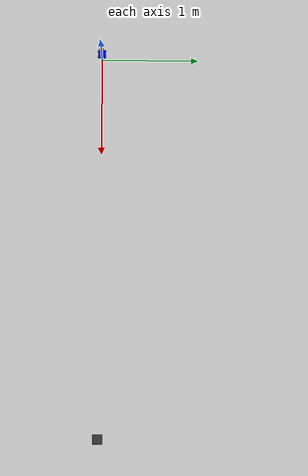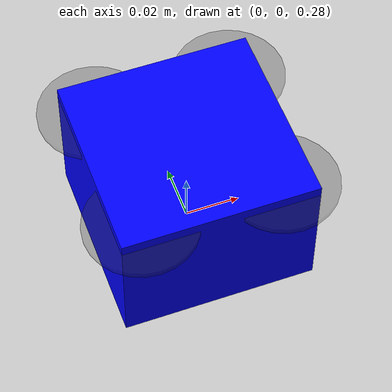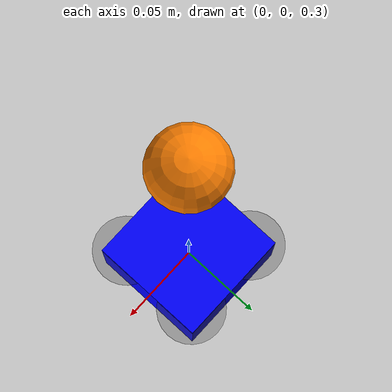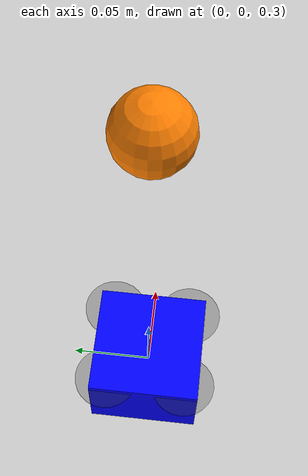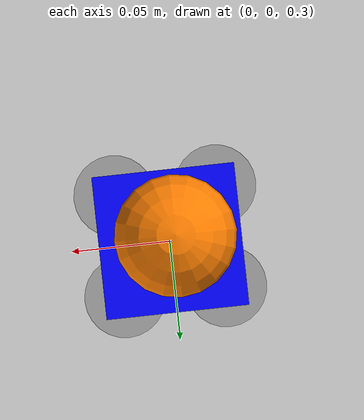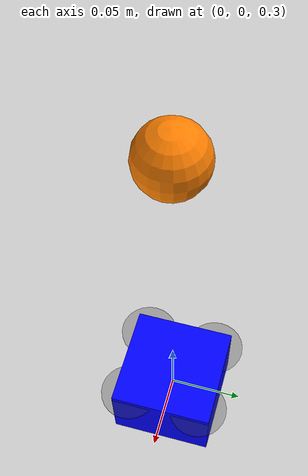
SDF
<?xml version="1.0" ?>
<sdf version="1.9">
  <world name="lifting_world">
    <physics name="fast_simulation" type="ignored">
      <max_step_size>0.0005</max_step_size>
      <real_time_factor>1.0</real_time_factor>
    </physics>

    <plugin filename="ignition-gazebo-physics-system"
            name="ignition::gazebo::systems::Physics"/>
    <plugin filename="ignition-gazebo-user-commands-system"
            name="ignition::gazebo::systems::UserCommands"/>
    <plugin filename="ignition-gazebo-scene-broadcaster-system"
            name="ignition::gazebo::systems::SceneBroadcaster"/>
    <plugin filename="ignition-gazebo-sensors-system"
            name="ignition::gazebo::systems::Sensors">
      <render_engine>ogre2</render_engine>
    </plugin>

    <scene>
      <ambient>0.6 0.6 0.6 1</ambient>
      <background>0.5 0.5 0.5 1</background>
      <shadows>false</shadows>
    </scene>

    <light type="directional" name="sun">
      <cast_shadows>false</cast_shadows>
      <pose>0 0 10 0 0 0</pose>
      <diffuse>0.8 0.8 0.8 1</diffuse>
      <specular>0.1 0.1 0.1 1</specular>
      <direction>-0.5 0.1 -0.9</direction>
    </light>

    <model name="ground_plane">
      <static>true</static>
      <link name="link">
        <collision name="collision">
          <geometry><plane><normal>0 0 1</normal></plane></geometry>
        </collision>
        <visual name="visual">
          <geometry><plane><normal>0 0 1</normal><size>10 10</size></plane></geometry>
          <material><ambient>0.8 0.8 0.8 1</ambient></material>
        </visual>
      </link>
    </model>

    <include>
      <uri>model://ground_camera</uri>
      <pose>4.0 0 0.5 0 0 3.14159</pose>
    </include>

    <include>
      <uri>model://m5fly</uri>
      <pose>0 0 0.30 0 0 0</pose>
    </include>

    <!--
      ボール初期位置: z=0.55m
      z=0.30m のドローンの真上 0.25m に配置。
      ボールが重力で落下 → 約 0.2s 後にドローンに到達 → スマッシュのサイクル開始。
    -->
    <include>
      <uri>model://pingpong_ball</uri>
      <pose>0 0 0.55 0 0 0</pose>
    </include>

  </world>
</sdf>

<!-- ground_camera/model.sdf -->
<sdf version="1.6">
  <model name="ground_camera">
    <static>true</static>
    <link name="link">
      <visual name="visual">
        <geometry><box><size>0.1 0.1 0.05</size></box></geometry>
        <material><diffuse>0.2 0.2 0.2 1</diffuse></material>
      </visual>

      <sensor name="camera_ground" type="camera">
        <pose>0 0 0.05 0 0 0</pose>
        <camera>
          <horizontal_fov>1.5</horizontal_fov>
          <image>
            <width>1280</width><height>720</height>
          </image>
          <clip><near>0.01</near><far>10</far></clip>
        </camera>
        <always_on>1</always_on>
        <update_rate>30</update_rate>
        <visualize>true</visualize>
        <topic>camera/image_raw</topic>
      </sensor>
    </link>
  </model>
</sdf>

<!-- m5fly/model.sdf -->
<sdf version="1.9">
  <model name="m5fly">
    <pose>0 0 0.3 0 0 0</pose>

    <link name="base_link">
      <gravity>false</gravity>
      <inertial>
        <mass>0.035</mass>
        <inertia>
          <ixx>0.00003</ixx><ixy>0</ixy><ixz>0</ixz>
          <iyy>0.00003</iyy><iyz>0</iyz>
          <izz>0.00006</izz>
        </inertia>
      </inertial>

      <visual name="body_visual">
        <geometry>
          <box><size>0.07 0.07 0.05</size></box>
        </geometry>
        <material>
          <ambient>0.0 0.0 0.8 1</ambient>
          <diffuse>0.0 0.0 1.0 1</diffuse>
          <specular>0.0 0.0 0.1 1</specular>
          <emissive>0.0 0.0 0.5 1</emissive>
        </material>
      </visual>

      <collision name="collision">
        <geometry>
          <box><size>0.07 0.07 0.02</size></box>
        </geometry>
        <surface>
          <bounce>
            <restitution_coefficient>1.0</restitution_coefficient>
            <threshold>0</threshold>
          </bounce>
          <contact>
            <ode><max_vel>100</max_vel><min_depth>0.001</min_depth></ode>
          </contact>
        </surface>
      </collision>

      <collision name="top_guard_collision">
        <pose>0 0 0.035 0 0 0</pose>
        <geometry>
          <box><size>0.09 0.09 0.002</size></box>
        </geometry>
        <surface>
          <friction>
            <ode><mu>0.0</mu><mu2>0.0</mu2></ode>
          </friction>
          <bounce>
            <restitution_coefficient>0.9</restitution_coefficient>
            <threshold>0.01</threshold>
          </bounce>
          <contact>
            <ode><max_vel>100</max_vel><min_depth>0.001</min_depth></ode>
          </contact>
        </surface>
      </collision>
    </link>

    <link name="rotor_0">
      <pose>0.025 -0.025 0.02 0 0 0</pose>
      <gravity>false</gravity>
      <inertial><mass>0.001</mass>
        <inertia><ixx>0.000001</ixx><iyy>0.000001</iyy><izz>0.000001</izz></inertia>
      </inertial>
      <visual name="rotor_0_visual">
        <geometry><cylinder><radius>0.02</radius><length>0.002</length></cylinder></geometry>
        <material><diffuse>0.2 0.2 0.2 0.3</diffuse></material>
      </visual>
    </link>
    <joint name="rotor_0_joint" type="revolute">
      <parent>base_link</parent><child>rotor_0</child>
      <axis><xyz>0 0 1</xyz><limit><lower>-1e16</lower><upper>1e16</upper></limit></axis>
    </joint>

    <link name="rotor_1">
      <pose>-0.025 -0.025 0.02 0 0 0</pose>
      <gravity>false</gravity>
      <inertial><mass>0.001</mass>
        <inertia><ixx>0.000001</ixx><iyy>0.000001</iyy><izz>0.000001</izz></inertia>
      </inertial>
      <visual name="rotor_1_visual">
        <geometry><cylinder><radius>0.02</radius><length>0.002</length></cylinder></geometry>
        <material><diffuse>0.2 0.2 0.2 0.3</diffuse></material>
      </visual>
    </link>
    <joint name="rotor_1_joint" type="revolute">
      <parent>base_link</parent><child>rotor_1</child>
      <axis><xyz>0 0 1</xyz><limit><lower>-1e16</lower><upper>1e16</upper></limit></axis>
    </joint>

    <link name="rotor_2">
      <pose>0.025 0.025 0.02 0 0 0</pose>
      <gravity>false</gravity>
      <inertial><mass>0.001</mass>
        <inertia><ixx>0.000001</ixx><iyy>0.000001</iyy><izz>0.000001</izz></inertia>
      </inertial>
      <visual name="rotor_2_visual">
        <geometry><cylinder><radius>0.02</radius><length>0.002</length></cylinder></geometry>
        <material><diffuse>0.2 0.2 0.2 0.3</diffuse></material>
      </visual>
    </link>
    <joint name="rotor_2_joint" type="revolute">
      <parent>base_link</parent><child>rotor_2</child>
      <axis><xyz>0 0 1</xyz><limit><lower>-1e16</lower><upper>1e16</upper></limit></axis>
    </joint>

    <link name="rotor_3">
      <pose>-0.025 0.025 0.02 0 0 0</pose>
      <gravity>false</gravity>
      <inertial><mass>0.001</mass>
        <inertia><ixx>0.000001</ixx><iyy>0.000001</iyy><izz>0.000001</izz></inertia>
      </inertial>
      <visual name="rotor_3_visual">
        <geometry><cylinder><radius>0.02</radius><length>0.002</length></cylinder></geometry>
        <material><diffuse>0.2 0.2 0.2 0.3</diffuse></material>
      </visual>
    </link>
    <joint name="rotor_3_joint" type="revolute">
      <parent>base_link</parent><child>rotor_3</child>
      <axis><xyz>0 0 1</xyz><limit><lower>-1e16</lower><upper>1e16</upper></limit></axis>
    </joint>

    <!--
      VelocityControl: cmd_vel を速度として base_link に直接適用する。
      MulticopterVelocityControl は35g機体で発振するため使用しない。
    -->
    <plugin
      filename="ignition-gazebo-velocity-control-system"
      name="ignition::gazebo::systems::VelocityControl">
      <topic>/m5fly/cmd_vel</topic>
    </plugin>

  </model>
</sdf>

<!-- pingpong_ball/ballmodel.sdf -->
<sdf version="1.9">
  <model name="pingpong_ball">
    <pose>0 0 1.0 0 0 0</pose>
    <link name="link">
      <inertial>
        <mass>0.0027</mass> <inertia>
          <ixx>0.0000002</ixx><ixy>0</ixy><ixz>0</ixz>
          <iyy>0.0000002</iyy><iyz>0</iyz>
          <izz>0.0000002</izz>
        </inertia>
      </inertial>
      <visual name="visual">
        <geometry>
          <sphere><radius>0.02</radius></sphere>
        </geometry>
        <material><diffuse>1.0 0.5 0.0 1</diffuse></material> </visual>
      <collision name="collision">
        <geometry>
          <sphere><radius>0.02</radius></sphere>
        </geometry>
        <surface>
          <bounce>
            <restitution_coefficient>0.9</restitution_coefficient> <threshold>0</threshold>
          </bounce>
          <contact>
            <ode><max_vel>10</max_vel></ode>
          </contact>
        </surface>
      </collision>
    </link>
  </model>
</sdf>
